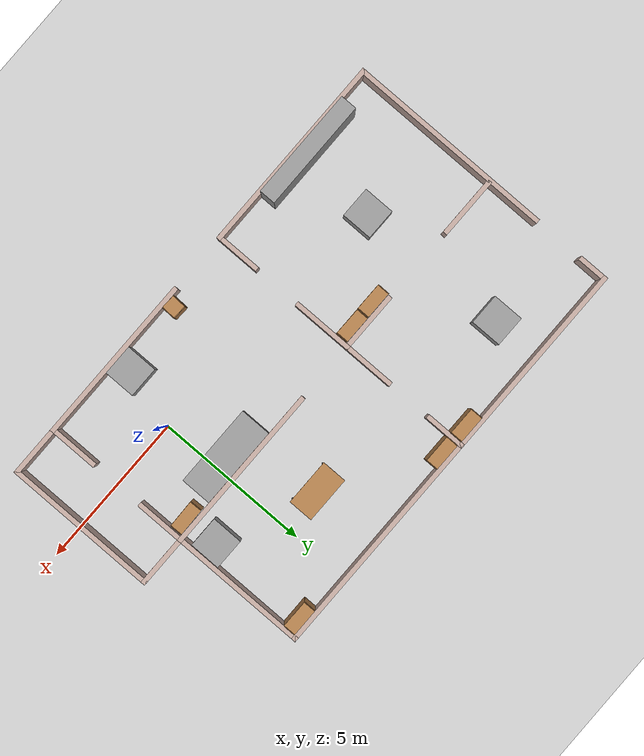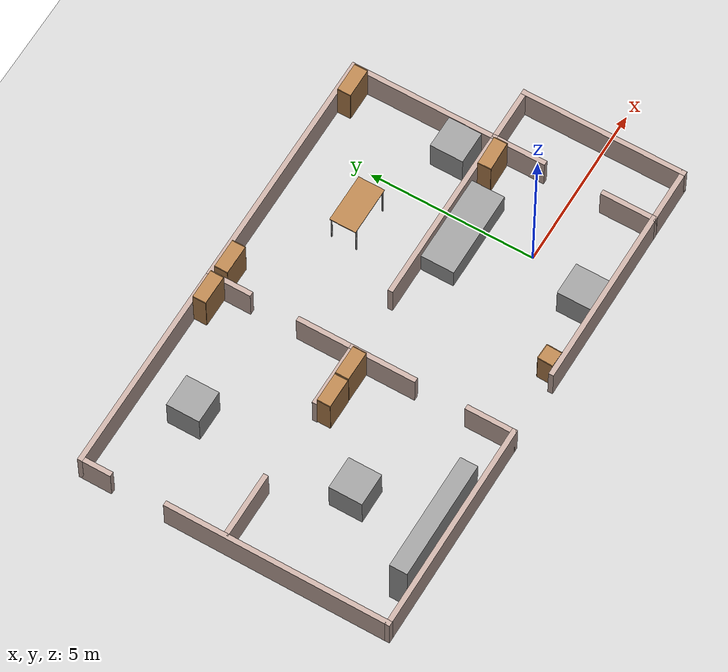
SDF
<sdf version="1.6">
 <world name="default">
  <light name="sun" type="directional">
   <pose>0 0 10 0 -0 0</pose>
   <diffuse>0.8 0.8 0.8 1</diffuse>
   <specular>0.2 0.2 0.2 1</specular>
   <attenuation>
    <range>1000</range>
    <constant>0.9</constant>
    <linear>0.01</linear>
    <quadratic>0.001</quadratic>
   </attenuation>
   <direction>-0.5 0.1 -0.9</direction>
  </light>
  <model name="ground_plane">
   <static>1</static>
   <link name="link">
    <collision name="collision">
     <geometry><plane><normal>0 0 1</normal><size>100 100</size></plane></geometry>
     <surface><friction><ode><mu>100</mu><mu2>50</mu2></ode></friction></surface>
    </collision>
    <visual name="visual">
     <cast_shadows>0</cast_shadows>
     <geometry><plane><normal>0 0 1</normal><size>100 100</size></plane></geometry>
     <material>
      <script><uri>file://media/materials/scripts/gazebo.material</uri><name>Gazebo/Grey</name></script>
     </material>
    </visual>
   </link>
  </model>
  <gravity>0 0 -9.8</gravity>
  <magnetic_field>6e-06 2.3e-05 -4.2e-05</magnetic_field>
  <atmosphere type="adiabatic"/>
  <physics name="default_physics" default="0" type="ode">
   <max_step_size>0.001</max_step_size>
   <real_time_factor>1</real_time_factor>
   <real_time_update_rate>1000</real_time_update_rate>
  </physics>
  <scene><ambient>0.4 0.4 0.4 1</ambient><background>0.7 0.7 0.7 1</background><shadows>1</shadows></scene>
  <spherical_coordinates>
   <surface_model>EARTH_WGS84</surface_model>
   <latitude_deg>0</latitude_deg>
   <longitude_deg>0</longitude_deg>
   <elevation>0</elevation>
   <heading_deg>0</heading_deg>
  </spherical_coordinates>
  <model name="MustarRoom">
   <pose>-3.87615 2.21877 0 0 -0 0</pose>
   <link name="Wall_10">
    <collision name="Wall_10_Collision">
     <geometry><box><size>5.5 0.15 1</size></box></geometry>
     <pose>0 0 0.5 0 -0 0</pose>
    </collision>
    <visual name="Wall_10_Visual">
     <pose>0 0 0.5 0 -0 0</pose>
     <geometry><box><size>5.5 0.15 1</size></box></geometry>
     <material>
      <script><uri>file://media/materials/scripts/gazebo.material</uri><name>Gazebo/Grey</name></script>
      <ambient>0.760784 0.662745 0.627451 1</ambient>
     </material>
     <meta><layer>0</layer></meta>
    </visual>
    <pose>3.375 -4.6 0 0 -0 0</pose>
   </link>
   <link name="Wall_24">
    <collision name="Wall_24_Collision">
     <geometry><box><size>5.5 0.15 1</size></box></geometry>
     <pose>0 0 0.5 0 -0 0</pose>
    </collision>
    <visual name="Wall_24_Visual">
     <pose>0 0 0.5 0 -0 0</pose>
     <geometry><box><size>5.5 0.15 1</size></box></geometry>
     <material>
      <script><uri>file://media/materials/scripts/gazebo.material</uri><name>Gazebo/Grey</name></script>
      <ambient>0.760784 0.662745 0.627451 1</ambient>
     </material>
     <meta><layer>0</layer></meta>
    </visual>
    <pose>3.375 0.25 0 0 -0 3.14159</pose>
   </link>
   <link name="Wall_36">
    <collision name="Wall_36_Collision">
     <geometry><box><size>1.65 0.15 1</size></box></geometry>
     <pose>0 0 0.5 0 -0 0</pose>
    </collision>
    <visual name="Wall_36_Visual">
     <pose>0 0 0.5 0 -0 0</pose>
     <geometry><box><size>1.65 0.15 1</size></box></geometry>
     <material>
      <script><uri>file://media/materials/scripts/gazebo.material</uri><name>Gazebo/Grey</name></script>
      <ambient>0.760784 0.662745 0.627451 1</ambient>
     </material>
     <meta><layer>0</layer></meta>
    </visual>
    <pose>6.05 -3.85 0 0 -0 1.5708</pose>
   </link>
   <link name="Wall_38">
    <collision name="Wall_38_Collision">
     <geometry><box><size>1.65 0.15 1</size></box></geometry>
     <pose>0 0 0.5 0 -0 0</pose>
    </collision>
    <visual name="Wall_38_Visual">
     <pose>0 0 0.5 0 -0 0</pose>
     <geometry><box><size>1.65 0.15 1</size></box></geometry>
     <material>
      <script><uri>file://media/materials/scripts/gazebo.material</uri><name>Gazebo/Grey</name></script>
      <ambient>0.760784 0.662745 0.627451 1</ambient>
     </material>
     <meta><layer>0</layer></meta>
    </visual>
    <pose>6.05 -0.5 0 0 0 -1.5708</pose>
   </link>
   <link name="Wall_41">
    <collision name="Wall_41_Collision">
     <geometry><box><size>4.5 0.15 1</size></box></geometry>
     <pose>0 0 0.5 0 -0 0</pose>
    </collision>
    <visual name="Wall_41_Visual">
     <pose>0 0 0.5 0 -0 0</pose>
     <geometry><box><size>4.5 0.15 1</size></box></geometry>
     <material>
      <script><uri>file://media/materials/scripts/gazebo.material</uri><name>Gazebo/Grey</name></script>
      <ambient>0.760784 0.662745 0.627451 1</ambient>
     </material>
     <meta><layer>0</layer></meta>
    </visual>
    <pose>6.05 2.425 0 0 -0 1.5708</pose>
   </link>
   <link name="Wall_43">
    <collision name="Wall_43_Collision">
     <geometry><box><size>7.5 0.15 1</size></box></geometry>
     <pose>0 0 0.5 0 -0 0</pose>
    </collision>
    <visual name="Wall_43_Visual">
     <pose>0 0 0.5 0 -0 0</pose>
     <geometry><box><size>7.5 0.15 1</size></box></geometry>
     <material>
      <script><uri>file://media/materials/scripts/gazebo.material</uri><name>Gazebo/Grey</name></script>
      <ambient>0.760784 0.662745 0.627451 1</ambient>
     </material>
     <meta><layer>0</layer></meta>
    </visual>
    <pose>2.375 4.6 0 0 -0 3.14159</pose>
   </link>
   <link name="Wall_47">
    <collision name="Wall_47_Collision">
     <geometry><box><size>1.75 0.15 1</size></box></geometry>
     <pose>0 0 0.5 0 -0 0</pose>
    </collision>
    <visual name="Wall_47_Visual">
     <pose>0 0 0.5 0 -0 0</pose>
     <geometry><box><size>1.75 0.15 1</size></box></geometry>
     <material>
      <script><uri>file://media/materials/scripts/gazebo.material</uri><name>Gazebo/Grey</name></script>
      <ambient>0.760784 0.662745 0.627451 1</ambient>
     </material>
     <meta><layer>0</layer></meta>
    </visual>
    <pose>-1.3 1.05 0 0 -0 1.5708</pose>
   </link>
   <link name="Wall_49">
    <collision name="Wall_49_Collision">
     <geometry><box><size>1.35 0.15 1</size></box></geometry>
     <pose>0 0 0.5 0 -0 0</pose>
    </collision>
    <visual name="Wall_49_Visual">
     <pose>0 0 0.5 0 -0 0</pose>
     <geometry><box><size>1.35 0.15 1</size></box></geometry>
     <material>
      <script><uri>file://media/materials/scripts/gazebo.material</uri><name>Gazebo/Grey</name></script>
      <ambient>0.760784 0.662745 0.627451 1</ambient>
     </material>
     <meta><layer>0</layer></meta>
    </visual>
    <pose>-1.3 4 0 0 -0 1.5708</pose>
   </link>
   <link name="Wall_51">
    <collision name="Wall_51_Collision">
     <geometry><box><size>6.5 0.15 1</size></box></geometry>
     <pose>0 0 0.5 0 -0 0</pose>
    </collision>
    <visual name="Wall_51_Visual">
     <pose>0 0 0.5 0 -0 0</pose>
     <geometry><box><size>6.5 0.15 1</size></box></geometry>
     <material>
      <script><uri>file://media/materials/scripts/gazebo.material</uri><name>Gazebo/Grey</name></script>
      <ambient>0.760784 0.662745 0.627451 1</ambient>
     </material>
     <meta><layer>0</layer></meta>
    </visual>
    <pose>-4.475 4.6 0 0 -0 3.14159</pose>
   </link>
   <link name="Wall_54">
    <collision name="Wall_54_Collision">
     <geometry><box><size>6.5 0.15 1</size></box></geometry>
     <pose>0 0 0.5 0 -0 0</pose>
    </collision>
    <visual name="Wall_54_Visual">
     <pose>0 0 0.5 0 -0 0</pose>
     <geometry><box><size>6.5 0.15 1</size></box></geometry>
     <material>
      <script><uri>file://media/materials/scripts/gazebo.material</uri><name>Gazebo/Grey</name></script>
      <ambient>0.760784 0.662745 0.627451 1</ambient>
     </material>
     <meta><layer>0</layer></meta>
    </visual>
    <pose>-4.475 -4.6 0 0 -0 0</pose>
   </link>
   <link name="Wall_58">
    <collision name="Wall_58_Collision">
     <geometry><box><size>2 0.15 1</size></box></geometry>
     <pose>0 0 0.5 0 -0 0</pose>
    </collision>
    <visual name="Wall_58_Visual">
     <pose>0 0 0.5 0 -0 0</pose>
     <geometry><box><size>2 0.15 1</size></box></geometry>
     <material>
      <script><uri>file://media/materials/scripts/gazebo.material</uri><name>Gazebo/Grey</name></script>
      <ambient>0.760784 0.662745 0.627451 1</ambient>
     </material>
     <meta><layer>0</layer></meta>
    </visual>
    <pose>-2.225 0.25 0 0 -0 3.14159</pose>
   </link>
   <link name="Wall_60">
    <collision name="Wall_60_Collision">
     <geometry><box><size>2 0.15 1</size></box></geometry>
     <pose>0 0 0.5 0 -0 0</pose>
    </collision>
    <visual name="Wall_60_Visual">
     <pose>0 0 0.5 0 -0 0</pose>
     <geometry><box><size>2 0.15 1</size></box></geometry>
     <material>
      <script><uri>file://media/materials/scripts/gazebo.material</uri><name>Gazebo/Grey</name></script>
      <ambient>0.760784 0.662745 0.627451 1</ambient>
     </material>
     <meta><layer>0</layer></meta>
    </visual>
    <pose>-6.634 0.255 0 0 -0 0</pose>
   </link>
   <link name="Wall_62">
    <collision name="Wall_62_Collision">
     <geometry><box><size>2 0.15 1</size></box></geometry>
     <pose>0 0 0.5 0 -0 0</pose>
    </collision>
    <visual name="Wall_62_Visual">
     <pose>0 0 0.5 0 -0 0</pose>
     <geometry><box><size>2 0.15 1</size></box></geometry>
     <material>
      <script><uri>file://media/materials/scripts/gazebo.material</uri><name>Gazebo/Grey</name></script>
      <ambient>0.760784 0.662745 0.627451 1</ambient>
     </material>
     <meta><layer>0</layer></meta>
    </visual>
    <pose>-1.3 -0.675 0 0 0 -1.5708</pose>
   </link>
   <link name="Wall_64">
    <collision name="Wall_64_Collision">
     <geometry><box><size>1.5 0.15 1</size></box></geometry>
     <pose>0 0 0.5 0 -0 0</pose>
    </collision>
    <visual name="Wall_64_Visual">
     <pose>0 0 0.5 0 -0 0</pose>
     <geometry><box><size>1.5 0.15 1</size></box></geometry>
     <material>
      <script><uri>file://media/materials/scripts/gazebo.material</uri><name>Gazebo/Grey</name></script>
      <ambient>0.760784 0.662745 0.627451 1</ambient>
     </material>
     <meta><layer>0</layer></meta>
    </visual>
    <pose>-1.3 -3.925 0 0 -0 1.5708</pose>
   </link>
   <link name="Wall_67">
    <collision name="Wall_67_Collision">
     <geometry><box><size>1.75 0.15 1</size></box></geometry>
     <pose>0 0 0.5 0 -0 0</pose>
    </collision>
    <visual name="Wall_67_Visual">
     <pose>0 0 0.5 0 -0 0</pose>
     <geometry><box><size>1.75 0.15 1</size></box></geometry>
     <material>
      <script><uri>file://media/materials/scripts/gazebo.material</uri><name>Gazebo/Grey</name></script>
      <ambient>0.760784 0.662745 0.627451 1</ambient>
     </material>
     <meta><layer>0</layer></meta>
    </visual>
    <pose>6.85 0.25 0 0 -0 0</pose>
   </link>
   <link name="Wall_68">
    <collision name="Wall_68_Collision">
     <geometry><box><size>5 0.15 1</size></box></geometry>
     <pose>0 0 0.5 0 -0 0</pose>
    </collision>
    <visual name="Wall_68_Visual">
     <pose>0 0 0.5 0 -0 0</pose>
     <geometry><box><size>5 0.15 1</size></box></geometry>
     <material>
      <script><uri>file://media/materials/scripts/gazebo.material</uri><name>Gazebo/Grey</name></script>
      <ambient>0.760784 0.662745 0.627451 1</ambient>
     </material>
     <meta><layer>0</layer></meta>
    </visual>
    <pose>7.65 -2.175 0 0 0 -1.5708</pose>
   </link>
   <link name="Wall_69">
    <collision name="Wall_69_Collision">
     <geometry><box><size>1.75 0.15 1</size></box></geometry>
     <pose>0 0 0.5 0 -0 0</pose>
    </collision>
    <visual name="Wall_69_Visual">
     <pose>0 0 0.5 0 -0 0</pose>
     <geometry><box><size>1.75 0.15 1</size></box></geometry>
     <material>
      <script><uri>file://media/materials/scripts/gazebo.material</uri><name>Gazebo/Grey</name></script>
      <ambient>0.760784 0.662745 0.627451 1</ambient>
     </material>
     <meta><layer>0</layer></meta>
    </visual>
    <pose>6.85 -4.6 0 0 -0 3.14159</pose>
   </link>
   <link name="Wall_71">
    <collision name="Wall_71_Collision">
     <geometry><box><size>6.75 0.15 1</size></box></geometry>
     <pose>0 0 0.5 0 -0 0</pose>
    </collision>
    <visual name="Wall_71_Visual">
     <pose>0 0 0.5 0 -0 0</pose>
     <geometry><box><size>6.75 0.15 1</size></box></geometry>
     <material>
      <script><uri>file://media/materials/scripts/gazebo.material</uri><name>Gazebo/Grey</name></script>
      <ambient>0.760784 0.662745 0.627451 1</ambient>
     </material>
     <meta><layer>0</layer></meta>
    </visual>
    <pose>-7.65 -1.3 0 0 -0 1.5708</pose>
   </link>
   <link name="Wall_73">
    <collision name="Wall_73_Collision">
     <geometry><box><size>1 0.15 1</size></box></geometry>
     <pose>0 0 0.5 0 -0 0</pose>
    </collision>
    <visual name="Wall_73_Visual">
     <pose>0 0 0.5 0 -0 0</pose>
     <geometry><box><size>1 0.15 1</size></box></geometry>
     <material>
      <script><uri>file://media/materials/scripts/gazebo.material</uri><name>Gazebo/Grey</name></script>
      <ambient>0.760784 0.662745 0.627451 1</ambient>
     </material>
     <meta><layer>0</layer></meta>
    </visual>
    <pose>-7.65 4.175 0 0 0 -1.5708</pose>
   </link>
   <static>1</static>
  </model>
  <model name="bookshelf">
   <static>1</static>
   <link name="link">
    <inertial><mass>1</mass></inertial>
    <collision name="back">
     <pose>0 0.005 0.6 0 -0 0</pose>
     <geometry><box><size>0.9 0.01 1.2</size></box></geometry>
    </collision>
    <visual name="visual1">
     <pose>0 0.005 0.6 0 -0 0</pose>
     <geometry><box><size>0.9 0.01 1.2</size></box></geometry>
     <material>
      <script><uri>file://media/materials/scripts/gazebo.material</uri><name>Gazebo/Wood</name></script>
     </material>
    </visual>
    <collision name="left_side">
     <pose>0.45 -0.195 0.6 0 -0 0</pose>
     <geometry><box><size>0.02 0.4 1.2</size></box></geometry>
    </collision>
    <visual name="visual2">
     <pose>0.45 -0.195 0.6 0 -0 0</pose>
     <geometry><box><size>0.02 0.4 1.2</size></box></geometry>
     <material>
      <script><uri>file://media/materials/scripts/gazebo.material</uri><name>Gazebo/Wood</name></script>
     </material>
    </visual>
    <collision name="right_side">
     <pose>-0.45 -0.195 0.6 0 -0 0</pose>
     <geometry><box><size>0.02 0.4 1.2</size></box></geometry>
    </collision>
    <visual name="visual3">
     <pose>-0.45 -0.195 0.6 0 -0 0</pose>
     <geometry><box><size>0.02 0.4 1.2</size></box></geometry>
     <material>
      <script><uri>file://media/materials/scripts/gazebo.material</uri><name>Gazebo/Wood</name></script>
     </material>
    </visual>
    <collision name="bottom">
     <pose>0 -0.195 0.03 0 -0 0</pose>
     <geometry><box><size>0.88 0.4 0.06</size></box></geometry>
    </collision>
    <visual name="visual4">
     <pose>0 -0.195 0.03 0 -0 0</pose>
     <geometry><box><size>0.88 0.4 0.06</size></box></geometry>
     <material>
      <script><uri>file://media/materials/scripts/gazebo.material</uri><name>Gazebo/Wood</name></script>
     </material>
    </visual>
    <collision name="top">
     <pose>0 -0.195 1.19 0 -0 0</pose>
     <geometry><box><size>0.88 0.4 0.02</size></box></geometry>
    </collision>
    <visual name="visual5">
     <pose>0 -0.195 1.19 0 -0 0</pose>
     <geometry><box><size>0.88 0.4 0.02</size></box></geometry>
     <material>
      <script><uri>file://media/materials/scripts/gazebo.material</uri><name>Gazebo/Wood</name></script>
     </material>
    </visual>
    <collision name="low_shelf">
     <pose>0 -0.195 0.43 0 -0 0</pose>
     <geometry><box><size>0.88 0.4 0.02</size></box></geometry>
    </collision>
    <visual name="visual6">
     <pose>0 -0.195 0.43 0 -0 0</pose>
     <geometry><box><size>0.88 0.4 0.02</size></box></geometry>
     <material>
      <script><uri>file://media/materials/scripts/gazebo.material</uri><name>Gazebo/Wood</name></script>
     </material>
    </visual>
    <collision name="high_shelf">
     <pose>0 -0.195 0.8 0 -0 0</pose>
     <geometry><box><size>0.88 0.4 0.02</size></box></geometry>
    </collision>
    <visual name="visual7">
     <pose>0 -0.195 0.8 0 -0 0</pose>
     <geometry><box><size>0.88 0.4 0.02</size></box></geometry>
     <material>
      <script><uri>file://media/materials/scripts/gazebo.material</uri><name>Gazebo/Wood</name></script>
     </material>
    </visual>
   </link>
   <pose>1.57661 1.98629 0.088046 0 0 -3.11904</pose>
  </model>
  <model name="cabinet">
   <static>1</static>
   <link name="cabinet_bottom_plate">
    <inertial>
     <pose>0 0 -1 0 -0 0</pose>
     <inertia><ixx>2.05</ixx><ixy>0</ixy><ixz>0</ixz><iyy>2.05</iyy><iyz>0</iyz><izz>2.05</izz></inertia>
     <mass>25</mass>
    </inertial>
    <collision name="cabinet_bottom_plate_geom">
     <pose>0 0 0.01 0 -0 0</pose>
     <geometry><box><size>0.45 0.45 0.02</size></box></geometry>
    </collision>
    <visual name="cabinet_bottom_plate_geom_visual">
     <pose>0 0 0.01 0 -0 0</pose>
     <geometry><box><size>0.45 0.45 0.02</size></box></geometry>
     <material>
      <script><uri>file://media/materials/scripts/gazebo.material</uri><name>Gazebo/Wood</name></script>
     </material>
    </visual>
    <collision name="cabinet_bottom_plate_geom_cabinet_back_plate">
     <pose>0.235 0 0.51 0 -0 0</pose>
     <geometry><box><size>0.02 0.45 1.02</size></box></geometry>
    </collision>
    <visual name="cabinet_bottom_plate_geom_cabinet_back_plate_visual">
     <pose>0.235 0 0.51 0 -0 0</pose>
     <geometry><box><size>0.02 0.45 1.02</size></box></geometry>
     <material>
      <script><uri>file://media/materials/scripts/gazebo.material</uri><name>Gazebo/Wood</name></script>
     </material>
    </visual>
    <collision name="cabinet_bottom_plate_geom_cabinet_left_plate">
     <pose>0 0.235 0.51 0 -0 0</pose>
     <geometry><box><size>0.45 0.02 1.02</size></box></geometry>
    </collision>
    <visual name="cabinet_bottom_plate_geom_cabinet_left_plate_visual">
     <pose>0 0.235 0.51 0 -0 0</pose>
     <geometry><box><size>0.45 0.02 1.02</size></box></geometry>
     <material>
      <script><uri>file://media/materials/scripts/gazebo.material</uri><name>Gazebo/Wood</name></script>
     </material>
    </visual>
    <collision name="cabinet_bottom_plate_geom_cabinet_middle_plate">
     <pose>0 0 0.51 0 -0 0</pose>
     <geometry><box><size>0.45 0.45 0.02</size></box></geometry>
    </collision>
    <visual name="cabinet_bottom_plate_geom_cabinet_middle_plate_visual">
     <pose>0 0 0.51 0 -0 0</pose>
     <geometry><box><size>0.45 0.45 0.02</size></box></geometry>
     <material>
      <script><uri>file://media/materials/scripts/gazebo.material</uri><name>Gazebo/Wood</name></script>
     </material>
    </visual>
    <collision name="cabinet_bottom_plate_geom_cabinet_right_plate">
     <pose>0 -0.235 0.51 0 -0 0</pose>
     <geometry><box><size>0.45 0.02 1.02</size></box></geometry>
    </collision>
    <visual name="cabinet_bottom_plate_geom_cabinet_right_plate_visual">
     <pose>0 -0.235 0.51 0 -0 0</pose>
     <geometry><box><size>0.45 0.02 1.02</size></box></geometry>
     <material>
      <script><uri>file://media/materials/scripts/gazebo.material</uri><name>Gazebo/Wood</name></script>
     </material>
    </visual>
    <collision name="cabinet_bottom_plate_geom_cabinet_top_plate">
     <pose>0 0 1.01 0 -0 0</pose>
     <geometry><box><size>0.45 0.45 0.02</size></box></geometry>
    </collision>
    <visual name="cabinet_bottom_plate_geom_cabinet_top_plate_visual">
     <pose>0 0 1.01 0 -0 0</pose>
     <geometry><box><size>0.45 0.45 0.02</size></box></geometry>
     <material>
      <script><uri>file://media/materials/scripts/gazebo.material</uri><name>Gazebo/Wood</name></script>
     </material>
    </visual>
   </link>
   <pose>-2.78056 -2.07917 0 0 -0 1.53429</pose>
  </model>
  <model name="unit_box">
   <pose>-0.559404 -1.80618 0.499999 0 0 -2.4e-05</pose>
   <link name="link">
    <inertial>
     <mass>1</mass>
     <inertia>
      <ixx>0.166667</ixx>
      <ixy>0</ixy>
      <ixz>0</ixz>
      <iyy>0.166667</iyy>
      <iyz>0</iyz>
      <izz>0.166667</izz>
     </inertia>
    </inertial>
    <collision name="collision"><geometry><box><size>0.999999 1 0.999998</size></box></geometry></collision>
    <visual name="visual">
     <geometry><box><size>0.999999 1 0.999998</size></box></geometry>
     <material>
      <script><name>Gazebo/Grey</name><uri>file://media/materials/scripts/gazebo.material</uri></script>
     </material>
    </visual>
   </link>
  </model>
  <model name="unit_box_clone">
   <pose>-0.467184 1.89156 0.359398 0 0 -0.000303</pose>
   <link name="link">
    <inertial>
     <mass>1</mass>
     <inertia>
      <ixx>0.166667</ixx>
      <ixy>0</ixy>
      <ixz>0</ixz>
      <iyy>0.166667</iyy>
      <iyz>0</iyz>
      <izz>0.166667</izz>
     </inertia>
    </inertial>
    <collision name="collision"><geometry><box><size>2.66302 1 0.718797</size></box></geometry></collision>
    <visual name="visual">
     <geometry><box><size>2.66302 1 0.718797</size></box></geometry>
     <material>
      <script><name>Gazebo/Grey</name><uri>file://media/materials/scripts/gazebo.material</uri></script>
     </material>
    </visual>
   </link>
  </model>
  <model name="table">
   <static>1</static>
   <link name="link">
    <collision name="surface">
     <pose>0 0 1 0 -0 0</pose>
     <geometry><box><size>1.5 0.8 0.03</size></box></geometry>
     <surface><friction><ode><mu>0.6</mu><mu2>0.6</mu2></ode></friction></surface>
    </collision>
    <visual name="visual1">
     <pose>0 0 1 0 -0 0</pose>
     <geometry><box><size>1.5 0.8 0.03</size></box></geometry>
     <material>
      <script><uri>file://media/materials/scripts/gazebo.material</uri><name>Gazebo/Wood</name></script>
     </material>
    </visual>
    <collision name="front_left_leg">
     <pose>0.68 0.38 0.5 0 -0 0</pose>
     <geometry><cylinder><radius>0.02</radius><length>1</length></cylinder></geometry>
    </collision>
    <visual name="front_left_leg">
     <pose>0.68 0.38 0.5 0 -0 0</pose>
     <geometry><cylinder><radius>0.02</radius><length>1</length></cylinder></geometry>
     <material>
      <script><uri>file://media/materials/scripts/gazebo.material</uri><name>Gazebo/Grey</name></script>
     </material>
    </visual>
    <collision name="front_right_leg">
     <pose>0.68 -0.38 0.5 0 -0 0</pose>
     <geometry><cylinder><radius>0.02</radius><length>1</length></cylinder></geometry>
    </collision>
    <visual name="front_right_leg">
     <pose>0.68 -0.38 0.5 0 -0 0</pose>
     <geometry><cylinder><radius>0.02</radius><length>1</length></cylinder></geometry>
     <material>
      <script><uri>file://media/materials/scripts/gazebo.material</uri><name>Gazebo/Grey</name></script>
     </material>
    </visual>
    <collision name="back_right_leg">
     <pose>-0.68 -0.38 0.5 0 -0 0</pose>
     <geometry><cylinder><radius>0.02</radius><length>1</length></cylinder></geometry>
    </collision>
    <visual name="back_right_leg">
     <pose>-0.68 -0.38 0.5 0 -0 0</pose>
     <geometry><cylinder><radius>0.02</radius><length>1</length></cylinder></geometry>
     <material>
      <script><uri>file://media/materials/scripts/gazebo.material</uri><name>Gazebo/Grey</name></script>
     </material>
    </visual>
    <collision name="back_left_leg">
     <pose>-0.68 0.38 0.5 0 -0 0</pose>
     <geometry><cylinder><radius>0.02</radius><length>1</length></cylinder></geometry>
    </collision>
    <visual name="back_left_leg">
     <pose>-0.68 0.38 0.5 0 -0 0</pose>
     <geometry><cylinder><radius>0.02</radius><length>1</length></cylinder></geometry>
     <material>
      <script><uri>file://media/materials/scripts/gazebo.material</uri><name>Gazebo/Grey</name></script>
     </material>
    </visual>
   </link>
   <pose>-1.46152 4.54351 0 0 -0 0</pose>
  </model>
  <model name="unit_box_0">
   <pose>1.58461 3.30809 0.5 0 0 -0.00256</pose>
   <link name="link">
    <inertial>
     <mass>1</mass>
     <inertia>
      <ixx>0.166667</ixx>
      <ixy>0</ixy>
      <ixz>0</ixz>
      <iyy>0.166667</iyy>
      <iyz>0</iyz>
      <izz>0.166667</izz>
     </inertia>
    </inertial>
    <collision name="collision"><geometry><box><size>0.999997 0.999997 1</size></box></geometry></collision>
    <visual name="visual">
     <geometry><box><size>0.999997 0.999997 1</size></box></geometry>
     <material>
      <script><name>Gazebo/Grey</name><uri>file://media/materials/scripts/gazebo.material</uri></script>
     </material>
    </visual>
   </link>
  </model>
  <model name="unit_box_1">
   <pose>-8.58555 5.25505 0.499999 0 -0 0.000441</pose>
   <link name="link">
    <inertial>
     <mass>1</mass>
     <inertia>
      <ixx>0.166667</ixx>
      <ixy>0</ixy>
      <ixz>0</ixz>
      <iyy>0.166667</iyy>
      <iyz>0</iyz>
      <izz>0.166667</izz>
     </inertia>
    </inertial>
    <collision name="collision"><geometry><box><size>0.999998 1 0.999999</size></box></geometry></collision>
    <visual name="visual">
     <geometry><box><size>0.999998 1 0.999999</size></box></geometry>
     <material>
      <script><name>Gazebo/Grey</name><uri>file://media/materials/scripts/gazebo.material</uri></script>
     </material>
    </visual>
   </link>
  </model>
  <model name="unit_box_2">
   <pose>-8.49468 0.406012 0.499998 0 -0 0</pose>
   <link name="link">
    <inertial>
     <mass>1</mass>
     <inertia>
      <ixx>0.166667</ixx>
      <ixy>0</ixy>
      <ixz>0</ixz>
      <iyy>0.166667</iyy>
      <iyz>0</iyz>
      <izz>0.166667</izz>
     </inertia>
    </inertial>
    <collision name="collision"><geometry><box><size>1 1 0.999996</size></box></geometry></collision>
    <visual name="visual">
     <geometry><box><size>1 1 0.999996</size></box></geometry>
     <material>
      <script><name>Gazebo/Grey</name><uri>file://media/materials/scripts/gazebo.material</uri></script>
     </material>
    </visual>
   </link>
  </model>
  <model name="unit_box_2_clone">
   <pose>-8.68339 -2.03904 0.919907 1.57079 0.000104 -3.14041</pose>
   <link name="link">
    <inertial>
     <mass>1</mass>
     <inertia>
      <ixx>0.166667</ixx>
      <ixy>0</ixy>
      <ixz>0</ixz>
      <iyy>0.166667</iyy>
      <iyz>0</iyz>
      <izz>0.166667</izz>
     </inertia>
    </inertial>
    <collision name="collision"><geometry><box><size>3.56847 1.84018 0.524927</size></box></geometry></collision>
    <visual name="visual">
     <geometry><box><size>3.56847 1.84018 0.524927</size></box></geometry>
     <material>
      <script><name>Gazebo/Grey</name><uri>file://media/materials/scripts/gazebo.material</uri></script>
     </material>
    </visual>
   </link>
  </model>
  <model name="bookshelf_clone_1_clone_0">
   <static>1</static>
   <link name="link">
    <inertial><mass>1</mass></inertial>
    <collision name="back">
     <pose>0 0.005 0.6 0 -0 0</pose>
     <geometry><box><size>0.9 0.01 1.2</size></box></geometry>
    </collision>
    <visual name="visual1">
     <pose>0 0.005 0.6 0 -0 0</pose>
     <geometry><box><size>0.9 0.01 1.2</size></box></geometry>
     <material>
      <script><uri>file://media/materials/scripts/gazebo.material</uri><name>Gazebo/Wood</name></script>
     </material>
    </visual>
    <collision name="left_side">
     <pose>0.45 -0.195 0.6 0 -0 0</pose>
     <geometry><box><size>0.02 0.4 1.2</size></box></geometry>
    </collision>
    <visual name="visual2">
     <pose>0.45 -0.195 0.6 0 -0 0</pose>
     <geometry><box><size>0.02 0.4 1.2</size></box></geometry>
     <material>
      <script><uri>file://media/materials/scripts/gazebo.material</uri><name>Gazebo/Wood</name></script>
     </material>
    </visual>
    <collision name="right_side">
     <pose>-0.45 -0.195 0.6 0 -0 0</pose>
     <geometry><box><size>0.02 0.4 1.2</size></box></geometry>
    </collision>
    <visual name="visual3">
     <pose>-0.45 -0.195 0.6 0 -0 0</pose>
     <geometry><box><size>0.02 0.4 1.2</size></box></geometry>
     <material>
      <script><uri>file://media/materials/scripts/gazebo.material</uri><name>Gazebo/Wood</name></script>
     </material>
    </visual>
    <collision name="bottom">
     <pose>0 -0.195 0.03 0 -0 0</pose>
     <geometry><box><size>0.88 0.4 0.06</size></box></geometry>
    </collision>
    <visual name="visual4">
     <pose>0 -0.195 0.03 0 -0 0</pose>
     <geometry><box><size>0.88 0.4 0.06</size></box></geometry>
     <material>
      <script><uri>file://media/materials/scripts/gazebo.material</uri><name>Gazebo/Wood</name></script>
     </material>
    </visual>
    <collision name="top">
     <pose>0 -0.195 1.19 0 -0 0</pose>
     <geometry><box><size>0.88 0.4 0.02</size></box></geometry>
    </collision>
    <visual name="visual5">
     <pose>0 -0.195 1.19 0 -0 0</pose>
     <geometry><box><size>0.88 0.4 0.02</size></box></geometry>
     <material>
      <script><uri>file://media/materials/scripts/gazebo.material</uri><name>Gazebo/Wood</name></script>
     </material>
    </visual>
    <collision name="low_shelf">
     <pose>0 -0.195 0.43 0 -0 0</pose>
     <geometry><box><size>0.88 0.4 0.02</size></box></geometry>
    </collision>
    <visual name="visual6">
     <pose>0 -0.195 0.43 0 -0 0</pose>
     <geometry><box><size>0.88 0.4 0.02</size></box></geometry>
     <material>
      <script><uri>file://media/materials/scripts/gazebo.material</uri><name>Gazebo/Wood</name></script>
     </material>
    </visual>
    <collision name="high_shelf">
     <pose>0 -0.195 0.8 0 -0 0</pose>
     <geometry><box><size>0.88 0.4 0.02</size></box></geometry>
    </collision>
    <visual name="visual7">
     <pose>0 -0.195 0.8 0 -0 0</pose>
     <geometry><box><size>0.88 0.4 0.02</size></box></geometry>
     <material>
      <script><uri>file://media/materials/scripts/gazebo.material</uri><name>Gazebo/Wood</name></script>
     </material>
    </visual>
   </link>
   <pose>1.62245 6.32645 0.088046 0 0 -3.13759</pose>
  </model>
  <model name="bookshelf_clone_1_clone_1">
   <static>1</static>
   <link name="link">
    <inertial><mass>1</mass></inertial>
    <collision name="back">
     <pose>0 0.005 0.6 0 -0 0</pose>
     <geometry><box><size>0.9 0.01 1.2</size></box></geometry>
    </collision>
    <visual name="visual1">
     <pose>0 0.005 0.6 0 -0 0</pose>
     <geometry><box><size>0.9 0.01 1.2</size></box></geometry>
     <material>
      <script><uri>file://media/materials/scripts/gazebo.material</uri><name>Gazebo/Wood</name></script>
     </material>
    </visual>
    <collision name="left_side">
     <pose>0.45 -0.195 0.6 0 -0 0</pose>
     <geometry><box><size>0.02 0.4 1.2</size></box></geometry>
    </collision>
    <visual name="visual2">
     <pose>0.45 -0.195 0.6 0 -0 0</pose>
     <geometry><box><size>0.02 0.4 1.2</size></box></geometry>
     <material>
      <script><uri>file://media/materials/scripts/gazebo.material</uri><name>Gazebo/Wood</name></script>
     </material>
    </visual>
    <collision name="right_side">
     <pose>-0.45 -0.195 0.6 0 -0 0</pose>
     <geometry><box><size>0.02 0.4 1.2</size></box></geometry>
    </collision>
    <visual name="visual3">
     <pose>-0.45 -0.195 0.6 0 -0 0</pose>
     <geometry><box><size>0.02 0.4 1.2</size></box></geometry>
     <material>
      <script><uri>file://media/materials/scripts/gazebo.material</uri><name>Gazebo/Wood</name></script>
     </material>
    </visual>
    <collision name="bottom">
     <pose>0 -0.195 0.03 0 -0 0</pose>
     <geometry><box><size>0.88 0.4 0.06</size></box></geometry>
    </collision>
    <visual name="visual4">
     <pose>0 -0.195 0.03 0 -0 0</pose>
     <geometry><box><size>0.88 0.4 0.06</size></box></geometry>
     <material>
      <script><uri>file://media/materials/scripts/gazebo.material</uri><name>Gazebo/Wood</name></script>
     </material>
    </visual>
    <collision name="top">
     <pose>0 -0.195 1.19 0 -0 0</pose>
     <geometry><box><size>0.88 0.4 0.02</size></box></geometry>
    </collision>
    <visual name="visual5">
     <pose>0 -0.195 1.19 0 -0 0</pose>
     <geometry><box><size>0.88 0.4 0.02</size></box></geometry>
     <material>
      <script><uri>file://media/materials/scripts/gazebo.material</uri><name>Gazebo/Wood</name></script>
     </material>
    </visual>
    <collision name="low_shelf">
     <pose>0 -0.195 0.43 0 -0 0</pose>
     <geometry><box><size>0.88 0.4 0.02</size></box></geometry>
    </collision>
    <visual name="visual6">
     <pose>0 -0.195 0.43 0 -0 0</pose>
     <geometry><box><size>0.88 0.4 0.02</size></box></geometry>
     <material>
      <script><uri>file://media/materials/scripts/gazebo.material</uri><name>Gazebo/Wood</name></script>
     </material>
    </visual>
    <collision name="high_shelf">
     <pose>0 -0.195 0.8 0 -0 0</pose>
     <geometry><box><size>0.88 0.4 0.02</size></box></geometry>
    </collision>
    <visual name="visual7">
     <pose>0 -0.195 0.8 0 -0 0</pose>
     <geometry><box><size>0.88 0.4 0.02</size></box></geometry>
     <material>
      <script><uri>file://media/materials/scripts/gazebo.material</uri><name>Gazebo/Wood</name></script>
     </material>
    </visual>
   </link>
   <pose>-4.63764 6.33204 0.088046 0 -0 3.13966</pose>
  </model>
  <model name="bookshelf_clone_1_clone_1_clone">
   <static>1</static>
   <link name="link">
    <inertial><mass>1</mass></inertial>
    <collision name="back">
     <pose>0 0.005 0.6 0 -0 0</pose>
     <geometry><box><size>0.9 0.01 1.2</size></box></geometry>
    </collision>
    <visual name="visual1">
     <pose>0 0.005 0.6 0 -0 0</pose>
     <geometry><box><size>0.9 0.01 1.2</size></box></geometry>
     <material>
      <script><uri>file://media/materials/scripts/gazebo.material</uri><name>Gazebo/Wood</name></script>
     </material>
    </visual>
    <collision name="left_side">
     <pose>0.45 -0.195 0.6 0 -0 0</pose>
     <geometry><box><size>0.02 0.4 1.2</size></box></geometry>
    </collision>
    <visual name="visual2">
     <pose>0.45 -0.195 0.6 0 -0 0</pose>
     <geometry><box><size>0.02 0.4 1.2</size></box></geometry>
     <material>
      <script><uri>file://media/materials/scripts/gazebo.material</uri><name>Gazebo/Wood</name></script>
     </material>
    </visual>
    <collision name="right_side">
     <pose>-0.45 -0.195 0.6 0 -0 0</pose>
     <geometry><box><size>0.02 0.4 1.2</size></box></geometry>
    </collision>
    <visual name="visual3">
     <pose>-0.45 -0.195 0.6 0 -0 0</pose>
     <geometry><box><size>0.02 0.4 1.2</size></box></geometry>
     <material>
      <script><uri>file://media/materials/scripts/gazebo.material</uri><name>Gazebo/Wood</name></script>
     </material>
    </visual>
    <collision name="bottom">
     <pose>0 -0.195 0.03 0 -0 0</pose>
     <geometry><box><size>0.88 0.4 0.06</size></box></geometry>
    </collision>
    <visual name="visual4">
     <pose>0 -0.195 0.03 0 -0 0</pose>
     <geometry><box><size>0.88 0.4 0.06</size></box></geometry>
     <material>
      <script><uri>file://media/materials/scripts/gazebo.material</uri><name>Gazebo/Wood</name></script>
     </material>
    </visual>
    <collision name="top">
     <pose>0 -0.195 1.19 0 -0 0</pose>
     <geometry><box><size>0.88 0.4 0.02</size></box></geometry>
    </collision>
    <visual name="visual5">
     <pose>0 -0.195 1.19 0 -0 0</pose>
     <geometry><box><size>0.88 0.4 0.02</size></box></geometry>
     <material>
      <script><uri>file://media/materials/scripts/gazebo.material</uri><name>Gazebo/Wood</name></script>
     </material>
    </visual>
    <collision name="low_shelf">
     <pose>0 -0.195 0.43 0 -0 0</pose>
     <geometry><box><size>0.88 0.4 0.02</size></box></geometry>
    </collision>
    <visual name="visual6">
     <pose>0 -0.195 0.43 0 -0 0</pose>
     <geometry><box><size>0.88 0.4 0.02</size></box></geometry>
     <material>
      <script><uri>file://media/materials/scripts/gazebo.material</uri><name>Gazebo/Wood</name></script>
     </material>
    </visual>
    <collision name="high_shelf">
     <pose>0 -0.195 0.8 0 -0 0</pose>
     <geometry><box><size>0.88 0.4 0.02</size></box></geometry>
    </collision>
    <visual name="visual7">
     <pose>0 -0.195 0.8 0 -0 0</pose>
     <geometry><box><size>0.88 0.4 0.02</size></box></geometry>
     <material>
      <script><uri>file://media/materials/scripts/gazebo.material</uri><name>Gazebo/Wood</name></script>
     </material>
    </visual>
   </link>
   <pose>-5.6997 6.34917 0.088046 0 -0 3.13966</pose>
  </model>
  <model name="bookshelf_clone_1_clone_1_clone_0">
   <static>1</static>
   <link name="link">
    <inertial><mass>1</mass></inertial>
    <collision name="back">
     <pose>0 0.005 0.6 0 -0 0</pose>
     <geometry><box><size>0.9 0.01 1.2</size></box></geometry>
    </collision>
    <visual name="visual1">
     <pose>0 0.005 0.6 0 -0 0</pose>
     <geometry><box><size>0.9 0.01 1.2</size></box></geometry>
     <material>
      <script><uri>file://media/materials/scripts/gazebo.material</uri><name>Gazebo/Wood</name></script>
     </material>
    </visual>
    <collision name="left_side">
     <pose>0.45 -0.195 0.6 0 -0 0</pose>
     <geometry><box><size>0.02 0.4 1.2</size></box></geometry>
    </collision>
    <visual name="visual2">
     <pose>0.45 -0.195 0.6 0 -0 0</pose>
     <geometry><box><size>0.02 0.4 1.2</size></box></geometry>
     <material>
      <script><uri>file://media/materials/scripts/gazebo.material</uri><name>Gazebo/Wood</name></script>
     </material>
    </visual>
    <collision name="right_side">
     <pose>-0.45 -0.195 0.6 0 -0 0</pose>
     <geometry><box><size>0.02 0.4 1.2</size></box></geometry>
    </collision>
    <visual name="visual3">
     <pose>-0.45 -0.195 0.6 0 -0 0</pose>
     <geometry><box><size>0.02 0.4 1.2</size></box></geometry>
     <material>
      <script><uri>file://media/materials/scripts/gazebo.material</uri><name>Gazebo/Wood</name></script>
     </material>
    </visual>
    <collision name="bottom">
     <pose>0 -0.195 0.03 0 -0 0</pose>
     <geometry><box><size>0.88 0.4 0.06</size></box></geometry>
    </collision>
    <visual name="visual4">
     <pose>0 -0.195 0.03 0 -0 0</pose>
     <geometry><box><size>0.88 0.4 0.06</size></box></geometry>
     <material>
      <script><uri>file://media/materials/scripts/gazebo.material</uri><name>Gazebo/Wood</name></script>
     </material>
    </visual>
    <collision name="top">
     <pose>0 -0.195 1.19 0 -0 0</pose>
     <geometry><box><size>0.88 0.4 0.02</size></box></geometry>
    </collision>
    <visual name="visual5">
     <pose>0 -0.195 1.19 0 -0 0</pose>
     <geometry><box><size>0.88 0.4 0.02</size></box></geometry>
     <material>
      <script><uri>file://media/materials/scripts/gazebo.material</uri><name>Gazebo/Wood</name></script>
     </material>
    </visual>
    <collision name="low_shelf">
     <pose>0 -0.195 0.43 0 -0 0</pose>
     <geometry><box><size>0.88 0.4 0.02</size></box></geometry>
    </collision>
    <visual name="visual6">
     <pose>0 -0.195 0.43 0 -0 0</pose>
     <geometry><box><size>0.88 0.4 0.02</size></box></geometry>
     <material>
      <script><uri>file://media/materials/scripts/gazebo.material</uri><name>Gazebo/Wood</name></script>
     </material>
    </visual>
    <collision name="high_shelf">
     <pose>0 -0.195 0.8 0 -0 0</pose>
     <geometry><box><size>0.88 0.4 0.02</size></box></geometry>
    </collision>
    <visual name="visual7">
     <pose>0 -0.195 0.8 0 -0 0</pose>
     <geometry><box><size>0.88 0.4 0.02</size></box></geometry>
     <material>
      <script><uri>file://media/materials/scripts/gazebo.material</uri><name>Gazebo/Wood</name></script>
     </material>
    </visual>
   </link>
   <pose>-5.73112 1.99404 0.088046 0 -0 3.13966</pose>
  </model>
  <model name="bookshelf_clone_1_clone_1_clone_1">
   <static>1</static>
   <link name="link">
    <inertial><mass>1</mass></inertial>
    <collision name="back">
     <pose>0 0.005 0.6 0 -0 0</pose>
     <geometry><box><size>0.9 0.01 1.2</size></box></geometry>
    </collision>
    <visual name="visual1">
     <pose>0 0.005 0.6 0 -0 0</pose>
     <geometry><box><size>0.9 0.01 1.2</size></box></geometry>
     <material>
      <script><uri>file://media/materials/scripts/gazebo.material</uri><name>Gazebo/Wood</name></script>
     </material>
    </visual>
    <collision name="left_side">
     <pose>0.45 -0.195 0.6 0 -0 0</pose>
     <geometry><box><size>0.02 0.4 1.2</size></box></geometry>
    </collision>
    <visual name="visual2">
     <pose>0.45 -0.195 0.6 0 -0 0</pose>
     <geometry><box><size>0.02 0.4 1.2</size></box></geometry>
     <material>
      <script><uri>file://media/materials/scripts/gazebo.material</uri><name>Gazebo/Wood</name></script>
     </material>
    </visual>
    <collision name="right_side">
     <pose>-0.45 -0.195 0.6 0 -0 0</pose>
     <geometry><box><size>0.02 0.4 1.2</size></box></geometry>
    </collision>
    <visual name="visual3">
     <pose>-0.45 -0.195 0.6 0 -0 0</pose>
     <geometry><box><size>0.02 0.4 1.2</size></box></geometry>
     <material>
      <script><uri>file://media/materials/scripts/gazebo.material</uri><name>Gazebo/Wood</name></script>
     </material>
    </visual>
    <collision name="bottom">
     <pose>0 -0.195 0.03 0 -0 0</pose>
     <geometry><box><size>0.88 0.4 0.06</size></box></geometry>
    </collision>
    <visual name="visual4">
     <pose>0 -0.195 0.03 0 -0 0</pose>
     <geometry><box><size>0.88 0.4 0.06</size></box></geometry>
     <material>
      <script><uri>file://media/materials/scripts/gazebo.material</uri><name>Gazebo/Wood</name></script>
     </material>
    </visual>
    <collision name="top">
     <pose>0 -0.195 1.19 0 -0 0</pose>
     <geometry><box><size>0.88 0.4 0.02</size></box></geometry>
    </collision>
    <visual name="visual5">
     <pose>0 -0.195 1.19 0 -0 0</pose>
     <geometry><box><size>0.88 0.4 0.02</size></box></geometry>
     <material>
      <script><uri>file://media/materials/scripts/gazebo.material</uri><name>Gazebo/Wood</name></script>
     </material>
    </visual>
    <collision name="low_shelf">
     <pose>0 -0.195 0.43 0 -0 0</pose>
     <geometry><box><size>0.88 0.4 0.02</size></box></geometry>
    </collision>
    <visual name="visual6">
     <pose>0 -0.195 0.43 0 -0 0</pose>
     <geometry><box><size>0.88 0.4 0.02</size></box></geometry>
     <material>
      <script><uri>file://media/materials/scripts/gazebo.material</uri><name>Gazebo/Wood</name></script>
     </material>
    </visual>
    <collision name="high_shelf">
     <pose>0 -0.195 0.8 0 -0 0</pose>
     <geometry><box><size>0.88 0.4 0.02</size></box></geometry>
    </collision>
    <visual name="visual7">
     <pose>0 -0.195 0.8 0 -0 0</pose>
     <geometry><box><size>0.88 0.4 0.02</size></box></geometry>
     <material>
      <script><uri>file://media/materials/scripts/gazebo.material</uri><name>Gazebo/Wood</name></script>
     </material>
    </visual>
   </link>
   <pose>-6.65812 1.99029 0.088046 0 -0 3.13966</pose>
  </model>
 </world>
</sdf>
